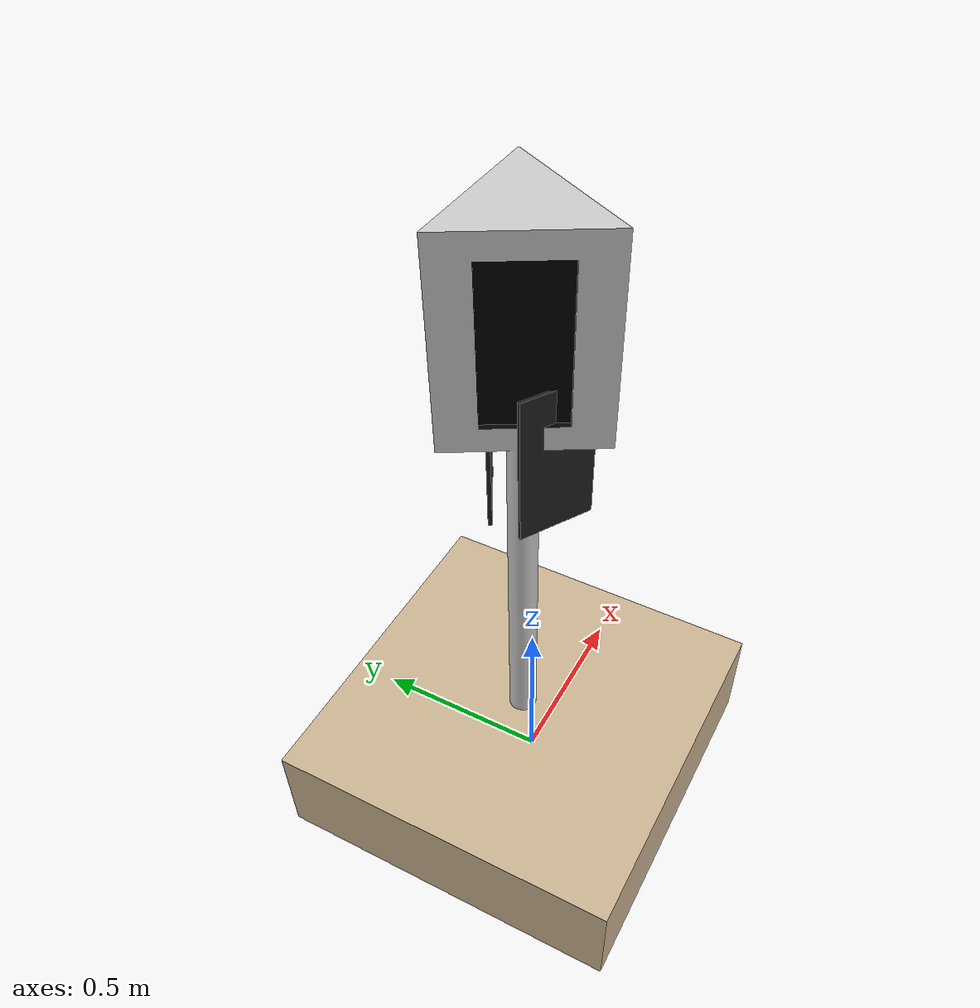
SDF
<?xml version="1.0"?>
<sdf version="1.6">
  <model name="robotx_light_buoy">
    <pose>0 0 -0.0762 0 0 0</pose>
    <link name="base_link">
      <velocity_decay>
        <linear>0.001</linear>
        <angular>0.001</angular>
      </velocity_decay>
      <inertial>
        <pose>0 0 -10 0 0 0</pose>
        <!-- 6.35 Kg. (dock block) x 9 (num blocks) + 10 Kg (estimated). -->
        <mass>67.15</mass>
        <inertia>
          <ixx>13.486</ixx>
          <ixy>0</ixy>
          <ixz>0</ixz>
          <iyy>13.486</iyy>
          <iyz>0</iyz>
          <izz>25.1813</izz>
        </inertia>
      </inertial>
      <visual name="base">
        <geometry>
           <mesh>
            <uri>file://robotx_light_buoy/mesh/robotx_light_buoy.dae</uri>
          </mesh>
        </geometry>
      </visual>
      <visual name="panel_1">
        <pose>-0.05 0.09 1.3 0 0 0.5</pose>
        <geometry>
          <box>
            <size>.192 .01 .386</size>
          </box>
        </geometry>
        <material>
          <script>
            <uri>file://media/materials/scripts/gazebo.material</uri>
            <name>Gazebo/Black</name>
          </script>
        </material>
        <plugin name="panel1plugin" filename="libgazebo_ros_color.so">
          <robotNamespace>light_buoy</robotNamespace>
          <topicName>panel1</topicName>
        </plugin>
      </visual>
      <visual name="panel_2">
        <pose>-0.06 -0.085 1.3 0 0 -0.54719</pose>
        <geometry>
          <box>
            <size>.192 .01 .386</size>
          </box>
        </geometry>
        <material>
          <script>
            <uri>file://media/materials/scripts/gazebo.material</uri>
            <name>Gazebo/Black</name>
          </script>
        </material>
        <plugin name="panel2plugin" filename="libgazebo_ros_color.so">
          <robotNamespace>light_buoy</robotNamespace>
          <topicName>panel2</topicName>
        </plugin>
      </visual>
      <visual name="panel_3">
        <pose>0.11 -0.003 1.3 0 0 1.5472</pose>
        <geometry>
          <box>
            <size>.192 .01 .386</size>
          </box>
        </geometry>
        <material>
          <script>
            <uri>file://media/materials/scripts/gazebo.material</uri>
            <name>Gazebo/Black</name>
          </script>
        </material>
        <plugin name="panel3plugin" filename="libgazebo_ros_color.so">
          <robotNamespace>light_buoy</robotNamespace>
          <topicName>panel3</topicName>
        </plugin>
      </visual>
      <collision name="collision_base">
        <pose>0 0 -0.2 0 0 0</pose>
        <geometry>
           <box>
            <size>1.5 1.5 0.4</size>
          </box>
        </geometry>
      </collision>
      <collision name="collision_body">
        <pose>0 0 0.85 0 0 0</pose>
        <geometry>
           <cylinder>
            <radius>0.4</radius>
            <length>1.75</length>
          </cylinder>
        </geometry>
      </collision>
    </link>
    <plugin name="BuoyancyPlugin" filename="libbuoyancy_gazebo_plugin.so">
      <fluid_density>1000</fluid_density>
      <fluid_level>0.0</fluid_level>
      <fluid_drag>5.0</fluid_drag>
      <link>
        <name>base_link</name>
        <center_of_volume>0 0 0.5</center_of_volume>
        <area>2.25</area>
        <height>0.70</height>
      </link>
    </plugin>
    <plugin name="controller" filename="liblight_buoy_controller.so">
      <robotNamespace>light_buoy</robotNamespace>
    </plugin>
  </model>
</sdf>
